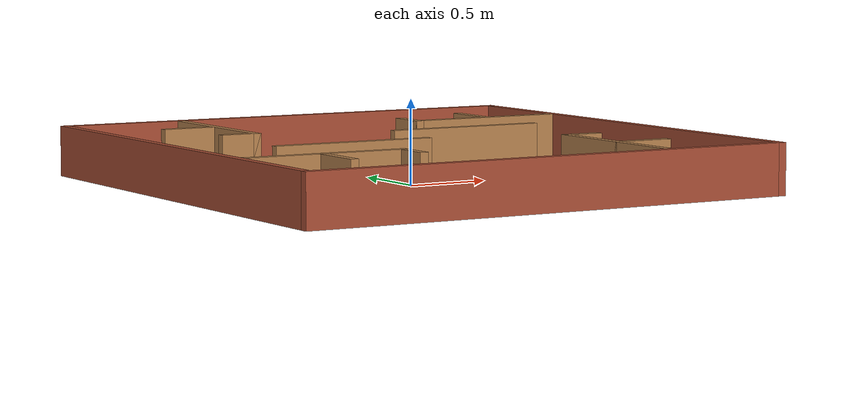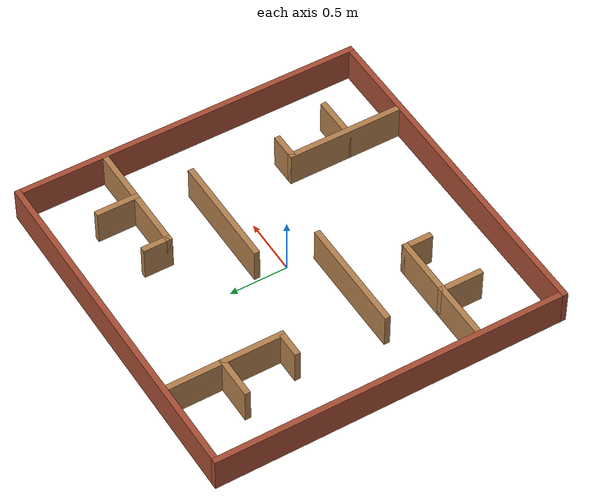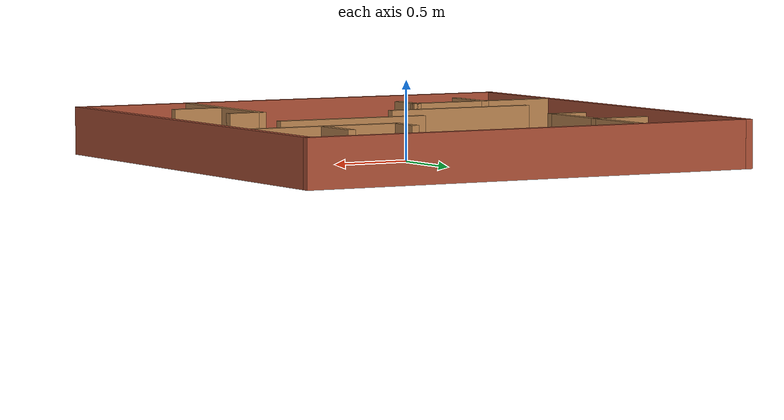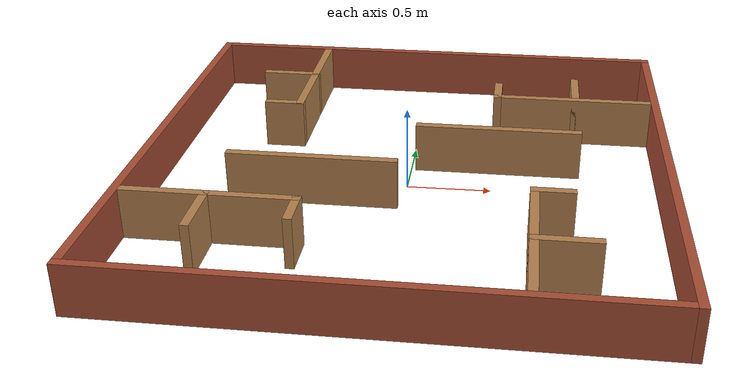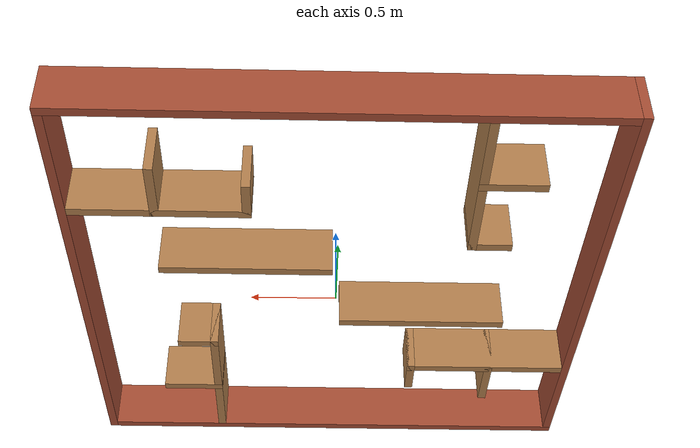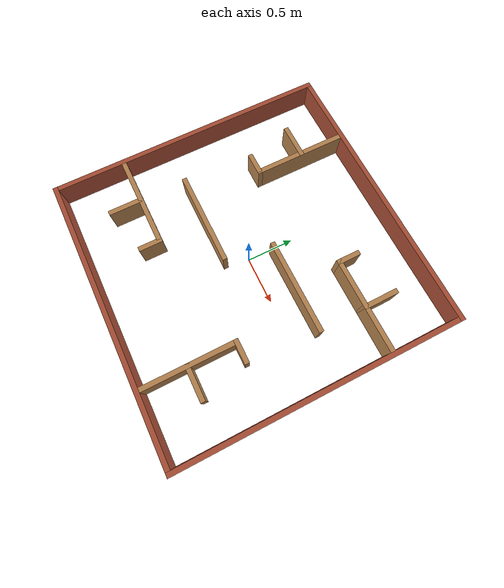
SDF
<?xml version='1.0'?>
<sdf version='1.6'>
  <model name='qmp_maze'>
    <pose frame=''>0 0 0 0 -0 0</pose>
    <link name='Wall_0'>
      <collision name='Wall_0_Collision'>
        <geometry>
          <box>
            <size>3 0.05 0.3</size>
          </box>
        </geometry>
        <pose frame=''>0 0 0.15 0 -0 0</pose>
      </collision>
      <visual name='Wall_0_Visual'>
        <pose frame=''>0 0 0.15 0 -0 0</pose>
        <geometry>
          <box>
            <size>3 0.05 0.3</size>
          </box>
        </geometry>
        <material>
          <script>
            <uri>file://media/materials/scripts/gazebo.material</uri>
            <name>Gazebo/Bricks</name>
          </script>
          <ambient>1 1 1 1</ambient>
        </material>
        <meta>
          <layer>0</layer>
        </meta>
      </visual>
      <pose frame=''>-1.5 0.025 0 0 -0 1.5708</pose>
    </link>
    <link name='Wall_10'>
      <collision name='Wall_10_Collision'>
        <geometry>
          <box>
            <size>1 0.05 0.3</size>
          </box>
        </geometry>
        <pose frame=''>0 0 0.15 0 -0 0</pose>
      </collision>
      <visual name='Wall_10_Visual'>
        <pose frame=''>0 0 0.15 0 -0 0</pose>
        <geometry>
          <box>
            <size>1 0.05 0.3</size>
          </box>
        </geometry>
        <material>
          <script>
            <uri>file://media/materials/scripts/gazebo.material</uri>
            <name>Gazebo/Wood</name>
          </script>
          <ambient>0.996078 0.47451 0.0196078 1</ambient>
        </material>
        <meta>
          <layer>0</layer>
        </meta>
      </visual>
      <pose frame=''>-0.75 0.975 0 0 -0 -1.5708</pose>
    </link>
    <link name='Wall_12'>
      <collision name='Wall_12_Collision'>
        <geometry>
          <box>
            <size>1 0.05 0.3</size>
          </box>
        </geometry>
        <pose frame=''>0 0 0.15 0 -0 0</pose>
      </collision>
      <visual name='Wall_12_Visual'>
        <pose frame=''>0 0 0.15 0 -0 0</pose>
        <geometry>
          <box>
            <size>1 0.05 0.3</size>
          </box>
        </geometry>
        <material>
          <script>
            <uri>file://media/materials/scripts/gazebo.material</uri>
            <name>Gazebo/Wood</name>
          </script>
          <ambient>0.996078 0.47451 0.0196078 1</ambient>
        </material>
        <meta>
          <layer>0</layer>
        </meta>
      </visual>
      <pose frame=''>-0.975 -0.75 0 0 -0 0</pose>
    </link>
    <link name='Wall_14'>
      <collision name='Wall_14_Collision'>
        <geometry>
          <box>
            <size>1 0.05 0.3</size>
          </box>
        </geometry>
        <pose frame=''>0 0 0.15 0 -0 0</pose>
      </collision>
      <visual name='Wall_14_Visual'>
        <pose frame=''>0 0 0.15 0 -0 0</pose>
        <geometry>
          <box>
            <size>1 0.05 0.3</size>
          </box>
        </geometry>
        <material>
          <script>
            <uri>file://media/materials/scripts/gazebo.material</uri>
            <name>Gazebo/Wood</name>
          </script>
          <ambient>0.996078 0.47451 0.0196078 1</ambient>
        </material>
        <meta>
          <layer>0</layer>
        </meta>
      </visual>
      <pose frame=''>0.75 -0.975 0 0 -0 1.5708</pose>
    </link>
    <link name='Wall_16'>
      <collision name='Wall_16_Collision'>
        <geometry>
          <box>
            <size>0.375 0.05 0.3</size>
          </box>
        </geometry>
        <pose frame=''>0 0 0.15 0 -0 0</pose>
      </collision>
      <visual name='Wall_16_Visual'>
        <pose frame=''>0 0 0.15 0 -0 0</pose>
        <geometry>
          <box>
            <size>0.375 0.05 0.3</size>
          </box>
        </geometry>
        <material>
          <script>
            <uri>file://media/materials/scripts/gazebo.material</uri>
            <name>Gazebo/Wood</name>
          </script>
          <ambient>0.996078 0.47451 0.0196078 1</ambient>
        </material>
        <meta>
          <layer>0</layer>
        </meta>
      </visual>
      <pose frame=''>0.9125 -1 0 0 -0 0</pose>
    </link>
    <link name='Wall_18'>
      <collision name='Wall_18_Collision'>
        <geometry>
          <box>
            <size>0.375 0.05 0.3</size>
          </box>
        </geometry>
        <pose frame=''>0 0 0.15 0 -0 0</pose>
      </collision>
      <visual name='Wall_18_Visual'>
        <pose frame=''>0 0 0.15 0 -0 0</pose>
        <geometry>
          <box>
            <size>0.375 0.05 0.3</size>
          </box>
        </geometry>
        <material>
          <script>
            <uri>file://media/materials/scripts/gazebo.material</uri>
            <name>Gazebo/Wood</name>
          </script>
          <ambient>0.996078 0.47451 0.0196078 1</ambient>
        </material>
        <meta>
          <layer>0</layer>
        </meta>
      </visual>
      <pose frame=''>-1 -0.9125 0 0 -0 -1.5708</pose>
    </link>
    <link name='Wall_2'>
      <collision name='Wall_2_Collision'>
        <geometry>
          <box>
            <size>3 0.05 0.3</size>
          </box>
        </geometry>
        <pose frame=''>0 0 0.15 0 -0 0</pose>
      </collision>
      <visual name='Wall_2_Visual'>
        <pose frame=''>0 0 0.15 0 -0 0</pose>
        <geometry>
          <box>
            <size>3 0.05 0.3</size>
          </box>
        </geometry>
        <material>
          <script>
            <uri>file://media/materials/scripts/gazebo.material</uri>
            <name>Gazebo/Bricks</name>
          </script>
          <ambient>1 1 1 1</ambient>
        </material>
        <meta>
          <layer>0</layer>
        </meta>
      </visual>
      <pose frame=''>0.025 1.5 0 0 -0 0</pose>
    </link>
    <link name='Wall_20'>
      <collision name='Wall_20_Collision'>
        <geometry>
          <box>
            <size>0.375 0.05 0.3</size>
          </box>
        </geometry>
        <pose frame=''>0 0 0.15 0 -0 0</pose>
      </collision>
      <visual name='Wall_20_Visual'>
        <pose frame=''>0 0 0.15 0 -0 0</pose>
        <geometry>
          <box>
            <size>0.375 0.05 0.3</size>
          </box>
        </geometry>
        <material>
          <script>
            <uri>file://media/materials/scripts/gazebo.material</uri>
            <name>Gazebo/Wood</name>
          </script>
          <ambient>0.996078 0.47451 0.0196078 1</ambient>
        </material>
        <meta>
          <layer>0</layer>
        </meta>
      </visual>
      <pose frame=''>-0.9125 1 0 0 -0 3.14159</pose>
    </link>
    <link name='Wall_22'>
      <collision name='Wall_22_Collision'>
        <geometry>
          <box>
            <size>0.375 0.05 0.3</size>
          </box>
        </geometry>
        <pose frame=''>0 0 0.15 0 -0 0</pose>
      </collision>
      <visual name='Wall_22_Visual'>
        <pose frame=''>0 0 0.15 0 -0 0</pose>
        <geometry>
          <box>
            <size>0.375 0.05 0.3</size>
          </box>
        </geometry>
        <material>
          <script>
            <uri>file://media/materials/scripts/gazebo.material</uri>
            <name>Gazebo/Wood</name>
          </script>
          <ambient>0.996078 0.47451 0.0196078 1</ambient>
        </material>
        <meta>
          <layer>0</layer>
        </meta>
      </visual>
      <pose frame=''>1 0.9125 0 0 -0 1.5708</pose>
    </link>
    <link name='Wall_24'>
      <collision name='Wall_24_Collision'>
        <geometry>
          <box>
            <size>0.25 0.05 0.3</size>
          </box>
        </geometry>
        <pose frame=''>0 0 0.15 0 -0 0</pose>
      </collision>
      <visual name='Wall_24_Visual'>
        <pose frame=''>0 0 0.15 0 -0 0</pose>
        <geometry>
          <box>
            <size>0.25 0.05 0.3</size>
          </box>
        </geometry>
        <material>
          <script>
            <uri>file://media/materials/scripts/gazebo.material</uri>
            <name>Gazebo/Wood</name>
          </script>
          <ambient>0.996078 0.47451 0.0196078 1</ambient>
        </material>
        <meta>
          <layer>0</layer>
        </meta>
      </visual>
      <pose frame=''>0.85 -0.5 0 0 -0 0</pose>
    </link>
    <link name='Wall_26'>
      <collision name='Wall_26_Collision'>
        <geometry>
          <box>
            <size>0.25 0.05 0.3</size>
          </box>
        </geometry>
        <pose frame=''>0 0 0.15 0 -0 0</pose>
      </collision>
      <visual name='Wall_26_Visual'>
        <pose frame=''>0 0 0.15 0 -0 0</pose>
        <geometry>
          <box>
            <size>0.25 0.05 0.3</size>
          </box>
        </geometry>
        <material>
          <script>
            <uri>file://media/materials/scripts/gazebo.material</uri>
            <name>Gazebo/Wood</name>
          </script>
          <ambient>0.996078 0.47451 0.0196078 1</ambient>
        </material>
        <meta>
          <layer>0</layer>
        </meta>
      </visual>
      <pose frame=''>-0.5 -0.85 0 0 -0 -1.5708</pose>
    </link>
    <link name='Wall_28'>
      <collision name='Wall_28_Collision'>
        <geometry>
          <box>
            <size>0.25 0.05 0.3</size>
          </box>
        </geometry>
        <pose frame=''>0 0 0.15 0 -0 0</pose>
      </collision>
      <visual name='Wall_28_Visual'>
        <pose frame=''>0 0 0.15 0 -0 0</pose>
        <geometry>
          <box>
            <size>0.25 0.05 0.3</size>
          </box>
        </geometry>
        <material>
          <script>
            <uri>file://media/materials/scripts/gazebo.material</uri>
            <name>Gazebo/Wood</name>
          </script>
          <ambient>0.996078 0.47451 0.0196078 1</ambient>
        </material>
        <meta>
          <layer>0</layer>
        </meta>
      </visual>
      <pose frame=''>-0.85 0.5 0 0 -0 3.14159</pose>
    </link>
    <link name='Wall_30'>
      <collision name='Wall_30_Collision'>
        <geometry>
          <box>
            <size>0.25 0.05 0.3</size>
          </box>
        </geometry>
        <pose frame=''>0 0 0.15 0 -0 0</pose>
      </collision>
      <visual name='Wall_30_Visual'>
        <pose frame=''>0 0 0.15 0 -0 0</pose>
        <geometry>
          <box>
            <size>0.25 0.05 0.3</size>
          </box>
        </geometry>
        <material>
          <script>
            <uri>file://media/materials/scripts/gazebo.material</uri>
            <name>Gazebo/Wood</name>
          </script>
          <ambient>0.996078 0.47451 0.0196078 1</ambient>
        </material>
        <meta>
          <layer>0</layer>
        </meta>
      </visual>
      <pose frame=''>0.5 0.85 0 0 -0 1.5708</pose>
    </link>
    <link name='Wall_32'>
      <collision name='Wall_32_Collision'>
        <geometry>
          <box>
            <size>1 0.05 0.3</size>
          </box>
        </geometry>
        <pose frame=''>0 0 0.15 0 -0 0</pose>
      </collision>
      <visual name='Wall_32_Visual'>
        <pose frame=''>0 0 0.15 0 -0 0</pose>
        <geometry>
          <box>
            <size>1 0.05 0.3</size>
          </box>
        </geometry>
        <material>
          <script>
            <uri>file://media/materials/scripts/gazebo.material</uri>
            <name>Gazebo/Wood</name>
          </script>
          <ambient>0.996078 0.47451 0.0196078 1</ambient>
        </material>
        <meta>
          <layer>0</layer>
        </meta>
      </visual>
      <pose frame=''>-0.525 -0.25 0 0 -0 0</pose>
    </link>
    <link name='Wall_34'>
      <collision name='Wall_34_Collision'>
        <geometry>
          <box>
            <size>1 0.05 0.3</size>
          </box>
        </geometry>
        <pose frame=''>0 0 0.15 0 -0 0</pose>
      </collision>
      <visual name='Wall_34_Visual'>
        <pose frame=''>0 0 0.15 0 -0 0</pose>
        <geometry>
          <box>
            <size>1 0.05 0.3</size>
          </box>
        </geometry>
        <material>
          <script>
            <uri>file://media/materials/scripts/gazebo.material</uri>
            <name>Gazebo/Wood</name>
          </script>
          <ambient>0.996078 0.47451 0.0196078 1</ambient>
        </material>
        <meta>
          <layer>0</layer>
        </meta>
      </visual>
      <pose frame=''>0.525 0.25 0 0 -0 0</pose>
    </link>
    <link name='Wall_4'>
      <collision name='Wall_4_Collision'>
        <geometry>
          <box>
            <size>3 0.05 0.3</size>
          </box>
        </geometry>
        <pose frame=''>0 0 0.15 0 -0 0</pose>
      </collision>
      <visual name='Wall_4_Visual'>
        <pose frame=''>0 0 0.15 0 -0 0</pose>
        <geometry>
          <box>
            <size>3 0.05 0.3</size>
          </box>
        </geometry>
        <material>
          <script>
            <uri>file://media/materials/scripts/gazebo.material</uri>
            <name>Gazebo/Bricks</name>
          </script>
          <ambient>1 1 1 1</ambient>
        </material>
        <meta>
          <layer>0</layer>
        </meta>
      </visual>
      <pose frame=''>1.5 -0.025 0 0 -0 -1.5708</pose>
    </link>
    <link name='Wall_6'>
      <collision name='Wall_6_Collision'>
        <geometry>
          <box>
            <size>3 0.05 0.3</size>
          </box>
        </geometry>
        <pose frame=''>0 0 0.15 0 -0 0</pose>
      </collision>
      <visual name='Wall_6_Visual'>
        <pose frame=''>0 0 0.15 0 -0 0</pose>
        <geometry>
          <box>
            <size>3 0.05 0.3</size>
          </box>
        </geometry>
        <material>
          <script>
            <uri>file://media/materials/scripts/gazebo.material</uri>
            <name>Gazebo/Bricks</name>
          </script>
          <ambient>1 1 1 1</ambient>
        </material>
        <meta>
          <layer>0</layer>
        </meta>
      </visual>
      <pose frame=''>-0.025 -1.5 0 0 -0 0</pose>
    </link>
    <link name='Wall_8'>
      <collision name='Wall_8_Collision'>
        <geometry>
          <box>
            <size>1 0.05 0.3</size>
          </box>
        </geometry>
        <pose frame=''>0 0 0.15 0 -0 0</pose>
      </collision>
      <visual name='Wall_8_Visual'>
        <pose frame=''>0 0 0.15 0 -0 0</pose>
        <geometry>
          <box>
            <size>1 0.05 0.3</size>
          </box>
        </geometry>
        <material>
          <script>
            <uri>file://media/materials/scripts/gazebo.material</uri>
            <name>Gazebo/Wood</name>
          </script>
          <ambient>0.996078 0.47451 0.0196078 1</ambient>
        </material>
        <meta>
          <layer>0</layer>
        </meta>
      </visual>
      <pose frame=''>0.975 0.75 0 0 -0 3.14159</pose>
    </link>
    <static>1</static>
  </model>
</sdf>
